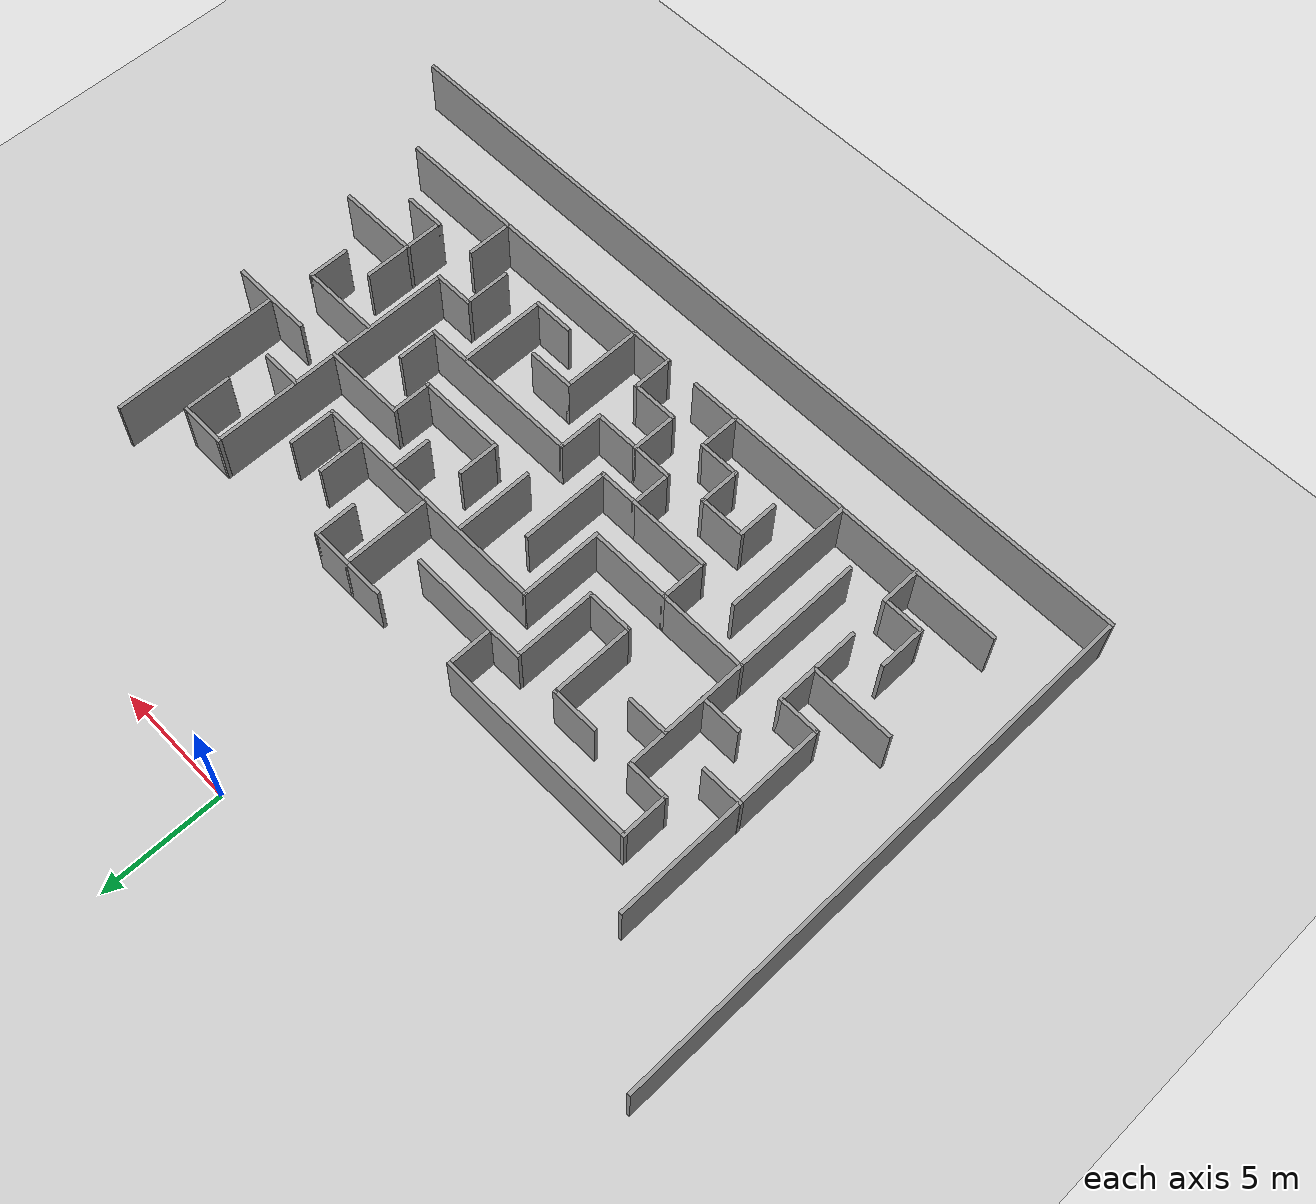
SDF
<sdf version="1.6">
 <world name="default">
  <model name="ground_plane">
   <static>1</static>
   <link name="link">
    <collision name="collision">
     <geometry><plane><normal>0 0 1</normal><size>100 100</size></plane></geometry>
     <surface><friction><ode><mu>100</mu><mu2>50</mu2></ode></friction></surface>
    </collision>
    <visual name="visual">
     <cast_shadows>0</cast_shadows>
     <geometry><plane><normal>0 0 1</normal><size>100 100</size></plane></geometry>
     <material>
      <script><uri>file://media/materials/scripts/gazebo.material</uri><name>Gazebo/Grey</name></script>
     </material>
    </visual>
   </link>
  </model>
  <model name="navigation-maze">
   <pose>0.2351 -0.2528 0 0 -0 0</pose>
   <link name="Wall_101">
    <collision name="Wall_101_Collision">
     <geometry><box><size>1.75 0.15 2.5</size></box></geometry>
     <pose>0 0 1.25 0 -0 0</pose>
    </collision>
    <visual name="Wall_101_Visual">
     <pose>0 0 1.25 0 -0 0</pose>
     <geometry><box><size>1.75 0.15 2.5</size></box></geometry>
     <material>
      <script><uri>file://media/materials/scripts/gazebo.material</uri><name>Gazebo/Grey</name></script>
      <ambient>1 1 1 1</ambient>
     </material>
    </visual>
    <pose>-12.2054 -11.2783 0 0 -0 0</pose>
   </link>
   <link name="Wall_260">
    <collision name="Wall_260_Collision">
     <geometry><box><size>14 0.15 2.5</size></box></geometry>
     <pose>0 0 1.25 0 -0 0</pose>
    </collision>
    <visual name="Wall_260_Visual">
     <pose>0 0 1.25 0 -0 0</pose>
     <geometry><box><size>14 0.15 2.5</size></box></geometry>
     <material>
      <script><uri>file://media/materials/scripts/gazebo.material</uri><name>Gazebo/Grey</name></script>
      <ambient>1 1 1 1</ambient>
     </material>
    </visual>
    <pose>7.72127 -21.675 0 0 -0 3.14159</pose>
   </link>
   <link name="Wall_261">
    <collision name="Wall_261_Collision">
     <geometry><box><size>1.75 0.15 2.5</size></box></geometry>
     <pose>0 0 1.25 0 -0 0</pose>
    </collision>
    <visual name="Wall_261_Visual">
     <pose>0 0 1.25 0 -0 0</pose>
     <geometry><box><size>1.75 0.15 2.5</size></box></geometry>
     <material>
      <script><uri>file://media/materials/scripts/gazebo.material</uri><name>Gazebo/Grey</name></script>
      <ambient>1 1 1 1</ambient>
     </material>
    </visual>
    <pose>0.79627 -20.875 0 0 -0 1.5708</pose>
   </link>
   <link name="Wall_262">
    <collision name="Wall_262_Collision">
     <geometry><box><size>2 0.15 2.5</size></box></geometry>
     <pose>0 0 1.25 0 -0 0</pose>
    </collision>
    <visual name="Wall_262_Visual">
     <pose>0 0 1.25 0 -0 0</pose>
     <geometry><box><size>2 0.15 2.5</size></box></geometry>
     <material>
      <script><uri>file://media/materials/scripts/gazebo.material</uri><name>Gazebo/Grey</name></script>
      <ambient>1 1 1 1</ambient>
     </material>
    </visual>
    <pose>-0.12873 -20.075 0 0 -0 3.14159</pose>
   </link>
   <link name="Wall_263">
    <collision name="Wall_263_Collision">
     <geometry><box><size>2 0.15 2.5</size></box></geometry>
     <pose>0 0 1.25 0 -0 0</pose>
    </collision>
    <visual name="Wall_263_Visual">
     <pose>0 0 1.25 0 -0 0</pose>
     <geometry><box><size>2 0.15 2.5</size></box></geometry>
     <material>
      <script><uri>file://media/materials/scripts/gazebo.material</uri><name>Gazebo/Grey</name></script>
      <ambient>1 1 1 1</ambient>
     </material>
    </visual>
    <pose>-1.05373 -19.15 0 0 -0 1.5708</pose>
   </link>
   <link name="Wall_264">
    <collision name="Wall_264_Collision">
     <geometry><box><size>1.75 0.15 2.5</size></box></geometry>
     <pose>0 0 1.25 0 -0 0</pose>
    </collision>
    <visual name="Wall_264_Visual">
     <pose>0 0 1.25 0 -0 0</pose>
     <geometry><box><size>1.75 0.15 2.5</size></box></geometry>
     <material>
      <script><uri>file://media/materials/scripts/gazebo.material</uri><name>Gazebo/Grey</name></script>
      <ambient>1 1 1 1</ambient>
     </material>
    </visual>
    <pose>-1.85373 -18.225 0 0 -0 3.14159</pose>
   </link>
   <link name="Wall_265">
    <collision name="Wall_265_Collision">
     <geometry><box><size>1.75 0.15 2.5</size></box></geometry>
     <pose>0 0 1.25 0 -0 0</pose>
    </collision>
    <visual name="Wall_265_Visual">
     <pose>0 0 1.25 0 -0 0</pose>
     <geometry><box><size>1.75 0.15 2.5</size></box></geometry>
     <material>
      <script><uri>file://media/materials/scripts/gazebo.material</uri><name>Gazebo/Grey</name></script>
      <ambient>1 1 1 1</ambient>
     </material>
    </visual>
    <pose>-2.65373 -17.425 0 0 -0 1.5708</pose>
   </link>
   <link name="Wall_266">
    <collision name="Wall_266_Collision">
     <geometry><box><size>3.5 0.15 2.5</size></box></geometry>
     <pose>0 0 1.25 0 -0 0</pose>
    </collision>
    <visual name="Wall_266_Visual">
     <pose>0 0 1.25 0 -0 0</pose>
     <geometry><box><size>3.5 0.15 2.5</size></box></geometry>
     <material>
      <script><uri>file://media/materials/scripts/gazebo.material</uri><name>Gazebo/Grey</name></script>
      <ambient>1 1 1 1</ambient>
     </material>
    </visual>
    <pose>-4.32873 -16.625 0 0 -0 3.14159</pose>
   </link>
   <link name="Wall_267">
    <collision name="Wall_267_Collision">
     <geometry><box><size>2 0.15 2.5</size></box></geometry>
     <pose>0 0 1.25 0 -0 0</pose>
    </collision>
    <visual name="Wall_267_Visual">
     <pose>0 0 1.25 0 -0 0</pose>
     <geometry><box><size>2 0.15 2.5</size></box></geometry>
     <material>
      <script><uri>file://media/materials/scripts/gazebo.material</uri><name>Gazebo/Grey</name></script>
      <ambient>1 1 1 1</ambient>
     </material>
    </visual>
    <pose>-6.00373 -15.7 0 0 -0 1.5708</pose>
   </link>
   <link name="Wall_268">
    <collision name="Wall_268_Collision">
     <geometry><box><size>3.75 0.15 2.5</size></box></geometry>
     <pose>0 0 1.25 0 -0 0</pose>
    </collision>
    <visual name="Wall_268_Visual">
     <pose>0 0 1.25 0 -0 0</pose>
     <geometry><box><size>3.75 0.15 2.5</size></box></geometry>
     <material>
      <script><uri>file://media/materials/scripts/gazebo.material</uri><name>Gazebo/Grey</name></script>
      <ambient>1 1 1 1</ambient>
     </material>
    </visual>
    <pose>-7.80373 -14.775 0 0 -0 3.14159</pose>
   </link>
   <link name="Wall_269">
    <collision name="Wall_269_Collision">
     <geometry><box><size>5.25 0.15 2.5</size></box></geometry>
     <pose>0 0 1.25 0 -0 0</pose>
    </collision>
    <visual name="Wall_269_Visual">
     <pose>0 0 1.25 0 -0 0</pose>
     <geometry><box><size>5.25 0.15 2.5</size></box></geometry>
     <material>
      <script><uri>file://media/materials/scripts/gazebo.material</uri><name>Gazebo/Grey</name></script>
      <ambient>1 1 1 1</ambient>
     </material>
    </visual>
    <pose>-9.60373 -12.225 0 0 -0 1.5708</pose>
   </link>
   <link name="Wall_270">
    <collision name="Wall_270_Collision">
     <geometry><box><size>1.75 0.15 2.5</size></box></geometry>
     <pose>0 0 1.25 0 -0 0</pose>
    </collision>
    <visual name="Wall_270_Visual">
     <pose>0 0 1.25 0 -0 0</pose>
     <geometry><box><size>1.75 0.15 2.5</size></box></geometry>
     <material>
      <script><uri>file://media/materials/scripts/gazebo.material</uri><name>Gazebo/Grey</name></script>
      <ambient>1 1 1 1</ambient>
     </material>
    </visual>
    <pose>-10.4037 -9.67497 0 0 -0 3.14159</pose>
   </link>
   <link name="Wall_271">
    <collision name="Wall_271_Collision">
     <geometry><box><size>2 0.15 2.5</size></box></geometry>
     <pose>0 0 1.25 0 -0 0</pose>
    </collision>
    <visual name="Wall_271_Visual">
     <pose>0 0 1.25 0 -0 0</pose>
     <geometry><box><size>2 0.15 2.5</size></box></geometry>
     <material>
      <script><uri>file://media/materials/scripts/gazebo.material</uri><name>Gazebo/Grey</name></script>
      <ambient>1 1 1 1</ambient>
     </material>
    </visual>
    <pose>-11.2037 -8.74997 0 0 -0 1.5708</pose>
   </link>
   <link name="Wall_272">
    <collision name="Wall_272_Collision">
     <geometry><box><size>8.5 0.15 2.5</size></box></geometry>
     <pose>0 0 1.25 0 -0 0</pose>
    </collision>
    <visual name="Wall_272_Visual">
     <pose>0 0 1.25 0 -0 0</pose>
     <geometry><box><size>8.5 0.15 2.5</size></box></geometry>
     <material>
      <script><uri>file://media/materials/scripts/gazebo.material</uri><name>Gazebo/Grey</name></script>
      <ambient>1 1 1 1</ambient>
     </material>
    </visual>
    <pose>-7.02873 -7.82497 0 0 -0 0</pose>
   </link>
   <link name="Wall_273">
    <collision name="Wall_273_Collision">
     <geometry><box><size>2 0.15 2.5</size></box></geometry>
     <pose>0 0 1.25 0 -0 0</pose>
    </collision>
    <visual name="Wall_273_Visual">
     <pose>0 0 1.25 0 -0 0</pose>
     <geometry><box><size>2 0.15 2.5</size></box></geometry>
     <material>
      <script><uri>file://media/materials/scripts/gazebo.material</uri><name>Gazebo/Grey</name></script>
      <ambient>1 1 1 1</ambient>
     </material>
    </visual>
    <pose>-2.85373 -8.74997 0 0 0 -1.5708</pose>
   </link>
   <link name="Wall_274">
    <collision name="Wall_274_Collision">
     <geometry><box><size>1.5 0.15 2.5</size></box></geometry>
     <pose>0 0 1.25 0 -0 0</pose>
    </collision>
    <visual name="Wall_274_Visual">
     <pose>0 0 1.25 0 -0 0</pose>
     <geometry><box><size>1.5 0.15 2.5</size></box></geometry>
     <material>
      <script><uri>file://media/materials/scripts/gazebo.material</uri><name>Gazebo/Grey</name></script>
      <ambient>1 1 1 1</ambient>
     </material>
    </visual>
    <pose>-3.52873 -9.67497 0 0 -0 3.14159</pose>
   </link>
   <link name="Wall_275">
    <collision name="Wall_275_Collision">
     <geometry><box><size>3.5 0.15 2.5</size></box></geometry>
     <pose>0 0 1.25 0 -0 0</pose>
    </collision>
    <visual name="Wall_275_Visual">
     <pose>0 0 1.25 0 -0 0</pose>
     <geometry><box><size>3.5 0.15 2.5</size></box></geometry>
     <material>
      <script><uri>file://media/materials/scripts/gazebo.material</uri><name>Gazebo/Grey</name></script>
      <ambient>1 1 1 1</ambient>
     </material>
    </visual>
    <pose>-4.20373 -11.35 0 0 0 -1.5708</pose>
   </link>
   <link name="Wall_276">
    <collision name="Wall_276_Collision">
     <geometry><box><size>2 0.15 2.5</size></box></geometry>
     <pose>0 0 1.25 0 -0 0</pose>
    </collision>
    <visual name="Wall_276_Visual">
     <pose>0 0 1.25 0 -0 0</pose>
     <geometry><box><size>2 0.15 2.5</size></box></geometry>
     <material>
      <script><uri>file://media/materials/scripts/gazebo.material</uri><name>Gazebo/Grey</name></script>
      <ambient>1 1 1 1</ambient>
     </material>
    </visual>
    <pose>-5.12873 -13.025 0 0 -0 3.14159</pose>
   </link>
   <link name="Wall_277">
    <collision name="Wall_277_Collision">
     <geometry><box><size>3.5 0.15 2.5</size></box></geometry>
     <pose>0 0 1.25 0 -0 0</pose>
    </collision>
    <visual name="Wall_277_Visual">
     <pose>0 0 1.25 0 -0 0</pose>
     <geometry><box><size>3.5 0.15 2.5</size></box></geometry>
     <material>
      <script><uri>file://media/materials/scripts/gazebo.material</uri><name>Gazebo/Grey</name></script>
      <ambient>1 1 1 1</ambient>
     </material>
    </visual>
    <pose>-6.05373 -11.35 0 0 -0 1.5708</pose>
   </link>
   <link name="Wall_278">
    <collision name="Wall_278_Collision">
     <geometry><box><size>2 0.15 2.5</size></box></geometry>
     <pose>0 0 1.25 0 -0 0</pose>
    </collision>
    <visual name="Wall_278_Visual">
     <pose>0 0 1.25 0 -0 0</pose>
     <geometry><box><size>2 0.15 2.5</size></box></geometry>
     <material>
      <script><uri>file://media/materials/scripts/gazebo.material</uri><name>Gazebo/Grey</name></script>
      <ambient>1 1 1 1</ambient>
     </material>
    </visual>
    <pose>-6.97873 -9.67497 0 0 -0 3.14159</pose>
   </link>
   <link name="Wall_319">
    <collision name="Wall_319_Collision">
     <geometry><box><size>2 0.15 2.5</size></box></geometry>
     <pose>0 0 1.25 0 -0 0</pose>
    </collision>
    <visual name="Wall_319_Visual">
     <pose>0 0 1.25 0 -0 0</pose>
     <geometry><box><size>2 0.15 2.5</size></box></geometry>
     <material>
      <script><uri>file://media/materials/scripts/gazebo.material</uri><name>Gazebo/Grey</name></script>
      <ambient>1 1 1 1</ambient>
     </material>
    </visual>
    <pose>10.3324 -7.72004 0 0 -0 3.14159</pose>
   </link>
   <link name="Wall_320">
    <collision name="Wall_320_Collision">
     <geometry><box><size>5.5 0.15 2.5</size></box></geometry>
     <pose>0 0 1.25 0 -0 0</pose>
    </collision>
    <visual name="Wall_320_Visual">
     <pose>0 0 1.25 0 -0 0</pose>
     <geometry><box><size>5.5 0.15 2.5</size></box></geometry>
     <material>
      <script><uri>file://media/materials/scripts/gazebo.material</uri><name>Gazebo/Grey</name></script>
      <ambient>1 1 1 1</ambient>
     </material>
    </visual>
    <pose>9.40741 -10.395 0 0 0 -1.5708</pose>
   </link>
   <link name="Wall_321">
    <collision name="Wall_321_Collision">
     <geometry><box><size>3.5 0.15 2.5</size></box></geometry>
     <pose>0 0 1.25 0 -0 0</pose>
    </collision>
    <visual name="Wall_321_Visual">
     <pose>0 0 1.25 0 -0 0</pose>
     <geometry><box><size>3.5 0.15 2.5</size></box></geometry>
     <material>
      <script><uri>file://media/materials/scripts/gazebo.material</uri><name>Gazebo/Grey</name></script>
      <ambient>1 1 1 1</ambient>
     </material>
    </visual>
    <pose>7.73241 -13.07 0 0 -0 3.14159</pose>
   </link>
   <link name="Wall_322">
    <collision name="Wall_322_Collision">
     <geometry><box><size>1.75 0.15 2.5</size></box></geometry>
     <pose>0 0 1.25 0 -0 0</pose>
    </collision>
    <visual name="Wall_322_Visual">
     <pose>0 0 1.25 0 -0 0</pose>
     <geometry><box><size>1.75 0.15 2.5</size></box></geometry>
     <material>
      <script><uri>file://media/materials/scripts/gazebo.material</uri><name>Gazebo/Grey</name></script>
      <ambient>1 1 1 1</ambient>
     </material>
    </visual>
    <pose>6.05741 -13.87 0 0 0 -1.5708</pose>
   </link>
   <link name="Wall_323">
    <collision name="Wall_323_Collision">
     <geometry><box><size>3.75 0.15 2.5</size></box></geometry>
     <pose>0 0 1.25 0 -0 0</pose>
    </collision>
    <visual name="Wall_323_Visual">
     <pose>0 0 1.25 0 -0 0</pose>
     <geometry><box><size>3.75 0.15 2.5</size></box></geometry>
     <material>
      <script><uri>file://media/materials/scripts/gazebo.material</uri><name>Gazebo/Grey</name></script>
      <ambient>1 1 1 1</ambient>
     </material>
    </visual>
    <pose>4.25741 -14.67 0 0 -0 3.14159</pose>
   </link>
   <link name="Wall_324">
    <collision name="Wall_324_Collision">
     <geometry><box><size>1.75 0.15 2.5</size></box></geometry>
     <pose>0 0 1.25 0 -0 0</pose>
    </collision>
    <visual name="Wall_324_Visual">
     <pose>0 0 1.25 0 -0 0</pose>
     <geometry><box><size>1.75 0.15 2.5</size></box></geometry>
     <material>
      <script><uri>file://media/materials/scripts/gazebo.material</uri><name>Gazebo/Grey</name></script>
      <ambient>1 1 1 1</ambient>
     </material>
    </visual>
    <pose>2.45741 -13.87 0 0 -0 1.5708</pose>
   </link>
   <link name="Wall_326">
    <collision name="Wall_326_Collision">
     <geometry><box><size>2 0.15 2.5</size></box></geometry>
     <pose>0 0 1.25 0 -0 0</pose>
    </collision>
    <visual name="Wall_326_Visual">
     <pose>0 0 1.25 0 -0 0</pose>
     <geometry><box><size>2 0.15 2.5</size></box></geometry>
     <material>
      <script><uri>file://media/materials/scripts/gazebo.material</uri><name>Gazebo/Grey</name></script>
      <ambient>1 1 1 1</ambient>
     </material>
    </visual>
    <pose>11.2574 -8.64504 0 0 0 -1.5708</pose>
   </link>
   <link name="Wall_331">
    <collision name="Wall_331_Collision">
     <geometry><box><size>1.75 0.15 2.5</size></box></geometry>
     <pose>0 0 1.25 0 -0 0</pose>
    </collision>
    <visual name="Wall_331_Visual">
     <pose>0 0 1.25 0 -0 0</pose>
     <geometry><box><size>1.75 0.15 2.5</size></box></geometry>
     <material>
      <script><uri>file://media/materials/scripts/gazebo.material</uri><name>Gazebo/Grey</name></script>
      <ambient>1 1 1 1</ambient>
     </material>
    </visual>
    <pose>10.2341 -11.2734 0 0 -0 0</pose>
   </link>
   <link name="Wall_333">
    <collision name="Wall_333_Collision">
     <geometry><box><size>5.25 0.15 2.5</size></box></geometry>
     <pose>0 0 1.25 0 -0 0</pose>
    </collision>
    <visual name="Wall_333_Visual">
     <pose>0 0 1.25 0 -0 0</pose>
     <geometry><box><size>5.25 0.15 2.5</size></box></geometry>
     <material>
      <script><uri>file://media/materials/scripts/gazebo.material</uri><name>Gazebo/Grey</name></script>
      <ambient>1 1 1 1</ambient>
     </material>
    </visual>
    <pose>9.40741 -15.62 0 0 0 -1.5708</pose>
   </link>
   <link name="Wall_334">
    <collision name="Wall_334_Collision">
     <geometry><box><size>1.75 0.15 2.5</size></box></geometry>
     <pose>0 0 1.25 0 -0 0</pose>
    </collision>
    <visual name="Wall_334_Visual">
     <pose>0 0 1.25 0 -0 0</pose>
     <geometry><box><size>1.75 0.15 2.5</size></box></geometry>
     <material>
      <script><uri>file://media/materials/scripts/gazebo.material</uri><name>Gazebo/Grey</name></script>
      <ambient>1 1 1 1</ambient>
     </material>
    </visual>
    <pose>8.60741 -18.17 0 0 -0 3.14159</pose>
   </link>
   <link name="Wall_335">
    <collision name="Wall_335_Collision">
     <geometry><box><size>2 0.15 2.5</size></box></geometry>
     <pose>0 0 1.25 0 -0 0</pose>
    </collision>
    <visual name="Wall_335_Visual">
     <pose>0 0 1.25 0 -0 0</pose>
     <geometry><box><size>2 0.15 2.5</size></box></geometry>
     <material>
      <script><uri>file://media/materials/scripts/gazebo.material</uri><name>Gazebo/Grey</name></script>
      <ambient>1 1 1 1</ambient>
     </material>
    </visual>
    <pose>7.80741 -19.095 0 0 0 -1.5708</pose>
   </link>
   <link name="Wall_337">
    <collision name="Wall_337_Collision">
     <geometry><box><size>3.5 0.15 2.5</size></box></geometry>
     <pose>0 0 1.25 0 -0 0</pose>
    </collision>
    <visual name="Wall_337_Visual">
     <pose>0 0 1.25 0 -0 0</pose>
     <geometry><box><size>3.5 0.15 2.5</size></box></geometry>
     <material>
      <script><uri>file://media/materials/scripts/gazebo.material</uri><name>Gazebo/Grey</name></script>
      <ambient>1 1 1 1</ambient>
     </material>
    </visual>
    <pose>11.0921 -14.7741 0 0 -0 0</pose>
   </link>
   <link name="Wall_338">
    <collision name="Wall_338_Collision">
     <geometry><box><size>1.75 0.15 2.5</size></box></geometry>
     <pose>0 0 1.25 0 -0 0</pose>
    </collision>
    <visual name="Wall_338_Visual">
     <pose>0 0 1.25 0 -0 0</pose>
     <geometry><box><size>1.75 0.15 2.5</size></box></geometry>
     <material>
      <script><uri>file://media/materials/scripts/gazebo.material</uri><name>Gazebo/Grey</name></script>
      <ambient>1 1 1 1</ambient>
     </material>
    </visual>
    <pose>12.7671 -15.5741 0 0 0 -1.5708</pose>
   </link>
   <link name="Wall_340">
    <collision name="Wall_340_Collision">
     <geometry><box><size>3.5 0.15 2.5</size></box></geometry>
     <pose>0 0 1.25 0 -0 0</pose>
    </collision>
    <visual name="Wall_340_Visual">
     <pose>0 0 1.25 0 -0 0</pose>
     <geometry><box><size>3.5 0.15 2.5</size></box></geometry>
     <material>
      <script><uri>file://media/materials/scripts/gazebo.material</uri><name>Gazebo/Grey</name></script>
      <ambient>1 1 1 1</ambient>
     </material>
    </visual>
    <pose>12.9593 -13.0068 0 0 -0 3.14159</pose>
   </link>
   <link name="Wall_342">
    <collision name="Wall_342_Collision">
     <geometry><box><size>7 0.15 2.5</size></box></geometry>
     <pose>0 0 1.25 0 -0 0</pose>
    </collision>
    <visual name="Wall_342_Visual">
     <pose>0 0 1.25 0 -0 0</pose>
     <geometry><box><size>7 0.15 2.5</size></box></geometry>
     <material>
      <script><uri>file://media/materials/scripts/gazebo.material</uri><name>Gazebo/Grey</name></script>
      <ambient>1 1 1 1</ambient>
     </material>
    </visual>
    <pose>12.9519 -9.46535 0 0 -0 1.5708</pose>
   </link>
   <link name="Wall_344">
    <collision name="Wall_344_Collision">
     <geometry><box><size>3.5 0.15 2.5</size></box></geometry>
     <pose>0 0 1.25 0 -0 0</pose>
    </collision>
    <visual name="Wall_344_Visual">
     <pose>0 0 1.25 0 -0 0</pose>
     <geometry><box><size>3.5 0.15 2.5</size></box></geometry>
     <material>
      <script><uri>file://media/materials/scripts/gazebo.material</uri><name>Gazebo/Grey</name></script>
      <ambient>1 1 1 1</ambient>
     </material>
    </visual>
    <pose>12.9763 -18.2069 0 0 -0 3.14159</pose>
   </link>
   <link name="Wall_345">
    <collision name="Wall_345_Collision">
     <geometry><box><size>1.75 0.15 2.5</size></box></geometry>
     <pose>0 0 1.25 0 -0 0</pose>
    </collision>
    <visual name="Wall_345_Visual">
     <pose>0 0 1.25 0 -0 0</pose>
     <geometry><box><size>1.75 0.15 2.5</size></box></geometry>
     <material>
      <script><uri>file://media/materials/scripts/gazebo.material</uri><name>Gazebo/Grey</name></script>
      <ambient>1 1 1 1</ambient>
     </material>
    </visual>
    <pose>11.3013 -19.0069 0 0 0 -1.5708</pose>
   </link>
   <link name="Wall_346">
    <collision name="Wall_346_Collision">
     <geometry><box><size>1.75 0.15 2.5</size></box></geometry>
     <pose>0 0 1.25 0 -0 0</pose>
    </collision>
    <visual name="Wall_346_Visual">
     <pose>0 0 1.25 0 -0 0</pose>
     <geometry><box><size>1.75 0.15 2.5</size></box></geometry>
     <material>
      <script><uri>file://media/materials/scripts/gazebo.material</uri><name>Gazebo/Grey</name></script>
      <ambient>1 1 1 1</ambient>
     </material>
    </visual>
    <pose>12.1013 -19.8069 0 0 -0 0</pose>
   </link>
   <link name="Wall_348">
    <collision name="Wall_348_Collision">
     <geometry><box><size>2 0.15 2.5</size></box></geometry>
     <pose>0 0 1.25 0 -0 0</pose>
    </collision>
    <visual name="Wall_348_Visual">
     <pose>0 0 1.25 0 -0 0</pose>
     <geometry><box><size>2 0.15 2.5</size></box></geometry>
     <material>
      <script><uri>file://media/materials/scripts/gazebo.material</uri><name>Gazebo/Grey</name></script>
      <ambient>1 1 1 1</ambient>
     </material>
    </visual>
    <pose>11.3013 -17.2819 0 0 -0 1.5708</pose>
   </link>
   <link name="Wall_350">
    <collision name="Wall_350_Collision">
     <geometry><box><size>2 0.15 2.5</size></box></geometry>
     <pose>0 0 1.25 0 -0 0</pose>
    </collision>
    <visual name="Wall_350_Visual">
     <pose>0 0 1.25 0 -0 0</pose>
     <geometry><box><size>2 0.15 2.5</size></box></geometry>
     <material>
      <script><uri>file://media/materials/scripts/gazebo.material</uri><name>Gazebo/Grey</name></script>
      <ambient>1 1 1 1</ambient>
     </material>
    </visual>
    <pose>9.45109 -20.7487 0 0 -0 1.5708</pose>
   </link>
   <link name="Wall_352">
    <collision name="Wall_352_Collision">
     <geometry><box><size>3.5 0.15 2.5</size></box></geometry>
     <pose>0 0 1.25 0 -0 0</pose>
    </collision>
    <visual name="Wall_352_Visual">
     <pose>0 0 1.25 0 -0 0</pose>
     <geometry><box><size>3.5 0.15 2.5</size></box></geometry>
     <material>
      <script><uri>file://media/materials/scripts/gazebo.material</uri><name>Gazebo/Grey</name></script>
      <ambient>1 1 1 1</ambient>
     </material>
    </visual>
    <pose>2.53453 -20.0157 0 0 -0 1.5708</pose>
   </link>
   <link name="Wall_353">
    <collision name="Wall_353_Collision">
     <geometry><box><size>2 0.15 2.5</size></box></geometry>
     <pose>0 0 1.25 0 -0 0</pose>
    </collision>
    <visual name="Wall_353_Visual">
     <pose>0 0 1.25 0 -0 0</pose>
     <geometry><box><size>2 0.15 2.5</size></box></geometry>
     <material>
      <script><uri>file://media/materials/scripts/gazebo.material</uri><name>Gazebo/Grey</name></script>
      <ambient>1 1 1 1</ambient>
     </material>
    </visual>
    <pose>3.45953 -18.3407 0 0 -0 0</pose>
   </link>
   <link name="Wall_355">
    <collision name="Wall_355_Collision">
     <geometry><box><size>2 0.15 2.5</size></box></geometry>
     <pose>0 0 1.25 0 -0 0</pose>
    </collision>
    <visual name="Wall_355_Visual">
     <pose>0 0 1.25 0 -0 0</pose>
     <geometry><box><size>2 0.15 2.5</size></box></geometry>
     <material>
      <script><uri>file://media/materials/scripts/gazebo.material</uri><name>Gazebo/Grey</name></script>
      <ambient>1 1 1 1</ambient>
     </material>
    </visual>
    <pose>-0.12873 -18.225 0 0 -0 0</pose>
   </link>
   <link name="Wall_356">
    <collision name="Wall_356_Collision">
     <geometry><box><size>2 0.15 2.5</size></box></geometry>
     <pose>0 0 1.25 0 -0 0</pose>
    </collision>
    <visual name="Wall_356_Visual">
     <pose>0 0 1.25 0 -0 0</pose>
     <geometry><box><size>2 0.15 2.5</size></box></geometry>
     <material>
      <script><uri>file://media/materials/scripts/gazebo.material</uri><name>Gazebo/Grey</name></script>
      <ambient>1 1 1 1</ambient>
     </material>
    </visual>
    <pose>0.79627 -17.3 0 0 -0 1.5708</pose>
   </link>
   <link name="Wall_357">
    <collision name="Wall_357_Collision">
     <geometry><box><size>7 0.15 2.5</size></box></geometry>
     <pose>0 0 1.25 0 -0 0</pose>
    </collision>
    <visual name="Wall_357_Visual">
     <pose>0 0 1.25 0 -0 0</pose>
     <geometry><box><size>7 0.15 2.5</size></box></geometry>
     <material>
      <script><uri>file://media/materials/scripts/gazebo.material</uri><name>Gazebo/Grey</name></script>
      <ambient>1 1 1 1</ambient>
     </material>
    </visual>
    <pose>4.22127 -16.375 0 0 -0 0</pose>
   </link>
   <link name="Wall_358">
    <collision name="Wall_358_Collision">
     <geometry><box><size>1.75 0.15 2.5</size></box></geometry>
     <pose>0 0 1.25 0 -0 0</pose>
    </collision>
    <visual name="Wall_358_Visual">
     <pose>0 0 1.25 0 -0 0</pose>
     <geometry><box><size>1.75 0.15 2.5</size></box></geometry>
     <material>
      <script><uri>file://media/materials/scripts/gazebo.material</uri><name>Gazebo/Grey</name></script>
      <ambient>1 1 1 1</ambient>
     </material>
    </visual>
    <pose>7.64627 -15.575 0 0 -0 1.5708</pose>
   </link>
   <link name="Wall_360">
    <collision name="Wall_360_Collision">
     <geometry><box><size>3.75 0.15 2.5</size></box></geometry>
     <pose>0 0 1.25 0 -0 0</pose>
    </collision>
    <visual name="Wall_360_Visual">
     <pose>0 0 1.25 0 -0 0</pose>
     <geometry><box><size>3.75 0.15 2.5</size></box></geometry>
     <material>
      <script><uri>file://media/materials/scripts/gazebo.material</uri><name>Gazebo/Grey</name></script>
      <ambient>1 1 1 1</ambient>
     </material>
    </visual>
    <pose>5.95033 -18.2056 0 0 0 -1.5708</pose>
   </link>
   <link name="Wall_361">
    <collision name="Wall_361_Collision">
     <geometry><box><size>1.75 0.15 2.5</size></box></geometry>
     <pose>0 0 1.25 0 -0 0</pose>
    </collision>
    <visual name="Wall_361_Visual">
     <pose>0 0 1.25 0 -0 0</pose>
     <geometry><box><size>1.75 0.15 2.5</size></box></geometry>
     <material>
      <script><uri>file://media/materials/scripts/gazebo.material</uri><name>Gazebo/Grey</name></script>
      <ambient>1 1 1 1</ambient>
     </material>
    </visual>
    <pose>5.15032 -20.0056 0 0 -0 3.14159</pose>
   </link>
   <link name="Wall_363">
    <collision name="Wall_363_Collision">
     <geometry><box><size>1.75 0.15 2.5</size></box></geometry>
     <pose>0 0 1.25 0 -0 0</pose>
    </collision>
    <visual name="Wall_363_Visual">
     <pose>0 0 1.25 0 -0 0</pose>
     <geometry><box><size>1.75 0.15 2.5</size></box></geometry>
     <material>
      <script><uri>file://media/materials/scripts/gazebo.material</uri><name>Gazebo/Grey</name></script>
      <ambient>1 1 1 1</ambient>
     </material>
    </visual>
    <pose>-1.85373 -16.625 0 0 -0 0</pose>
   </link>
   <link name="Wall_364">
    <collision name="Wall_364_Collision">
     <geometry><box><size>3.75 0.15 2.5</size></box></geometry>
     <pose>0 0 1.25 0 -0 0</pose>
    </collision>
    <visual name="Wall_364_Visual">
     <pose>0 0 1.25 0 -0 0</pose>
     <geometry><box><size>3.75 0.15 2.5</size></box></geometry>
     <material>
      <script><uri>file://media/materials/scripts/gazebo.material</uri><name>Gazebo/Grey</name></script>
      <ambient>1 1 1 1</ambient>
     </material>
    </visual>
    <pose>-1.05373 -14.825 0 0 -0 1.5708</pose>
   </link>
   <link name="Wall_366">
    <collision name="Wall_366_Collision">
     <geometry><box><size>3.5 0.15 2.5</size></box></geometry>
     <pose>0 0 1.25 0 -0 0</pose>
    </collision>
    <visual name="Wall_366_Visual">
     <pose>0 0 1.25 0 -0 0</pose>
     <geometry><box><size>3.5 0.15 2.5</size></box></geometry>
     <material>
      <script><uri>file://media/materials/scripts/gazebo.material</uri><name>Gazebo/Grey</name></script>
      <ambient>1 1 1 1</ambient>
     </material>
    </visual>
    <pose>-4.32873 -14.775 0 0 -0 0</pose>
   </link>
   <link name="Wall_367">
    <collision name="Wall_367_Collision">
     <geometry><box><size>3.5 0.15 2.5</size></box></geometry>
     <pose>0 0 1.25 0 -0 0</pose>
    </collision>
    <visual name="Wall_367_Visual">
     <pose>0 0 1.25 0 -0 0</pose>
     <geometry><box><size>3.5 0.15 2.5</size></box></geometry>
     <material>
      <script><uri>file://media/materials/scripts/gazebo.material</uri><name>Gazebo/Grey</name></script>
      <ambient>1 1 1 1</ambient>
     </material>
    </visual>
    <pose>-2.65373 -13.1 0 0 -0 1.5708</pose>
   </link>
   <link name="Wall_368">
    <collision name="Wall_368_Collision">
     <geometry><box><size>5.25 0.15 2.5</size></box></geometry>
     <pose>0 0 1.25 0 -0 0</pose>
    </collision>
    <visual name="Wall_368_Visual">
     <pose>0 0 1.25 0 -0 0</pose>
     <geometry><box><size>5.25 0.15 2.5</size></box></geometry>
     <material>
      <script><uri>file://media/materials/scripts/gazebo.material</uri><name>Gazebo/Grey</name></script>
      <ambient>1 1 1 1</ambient>
     </material>
    </visual>
    <pose>-0.10373 -11.425 0 0 -0 0</pose>
   </link>
   <link name="Wall_369">
    <collision name="Wall_369_Collision">
     <geometry><box><size>3.75 0.15 2.5</size></box></geometry>
     <pose>0 0 1.25 0 -0 0</pose>
    </collision>
    <visual name="Wall_369_Visual">
     <pose>0 0 1.25 0 -0 0</pose>
     <geometry><box><size>3.75 0.15 2.5</size></box></geometry>
     <material>
      <script><uri>file://media/materials/scripts/gazebo.material</uri><name>Gazebo/Grey</name></script>
      <ambient>1 1 1 1</ambient>
     </material>
    </visual>
    <pose>2.44627 -9.62497 0 0 -0 1.5708</pose>
   </link>
   <link name="Wall_370">
    <collision name="Wall_370_Collision">
     <geometry><box><size>1.75 0.15 2.5</size></box></geometry>
     <pose>0 0 1.25 0 -0 0</pose>
    </collision>
    <visual name="Wall_370_Visual">
     <pose>0 0 1.25 0 -0 0</pose>
     <geometry><box><size>1.75 0.15 2.5</size></box></geometry>
     <material>
      <script><uri>file://media/materials/scripts/gazebo.material</uri><name>Gazebo/Grey</name></script>
      <ambient>1 1 1 1</ambient>
     </material>
    </visual>
    <pose>3.24627 -7.82497 0 0 -0 0</pose>
   </link>
   <link name="Wall_379">
    <collision name="Wall_379_Collision">
     <geometry><box><size>1.75 0.15 2.5</size></box></geometry>
     <pose>0 0 1.25 0 -0 0</pose>
    </collision>
    <visual name="Wall_379_Visual">
     <pose>0 0 1.25 0 -0 0</pose>
     <geometry><box><size>1.75 0.15 2.5</size></box></geometry>
     <material>
      <script><uri>file://media/materials/scripts/gazebo.material</uri><name>Gazebo/Grey</name></script>
      <ambient>1 1 1 1</ambient>
     </material>
    </visual>
    <pose>4.04627 -8.62497 0 0 0 -1.5708</pose>
   </link>
   <link name="Wall_381">
    <collision name="Wall_381_Collision">
     <geometry><box><size>1.75 0.15 2.5</size></box></geometry>
     <pose>0 0 1.25 0 -0 0</pose>
    </collision>
    <visual name="Wall_381_Visual">
     <pose>0 0 1.25 0 -0 0</pose>
     <geometry><box><size>1.75 0.15 2.5</size></box></geometry>
     <material>
      <script><uri>file://media/materials/scripts/gazebo.material</uri><name>Gazebo/Grey</name></script>
      <ambient>1 1 1 1</ambient>
     </material>
    </visual>
    <pose>1.64627 -7.82497 0 0 -0 3.14159</pose>
   </link>
   <link name="Wall_384">
    <collision name="Wall_384_Collision">
     <geometry><box><size>5.25 0.15 2.5</size></box></geometry>
     <pose>0 0 1.25 0 -0 0</pose>
    </collision>
    <visual name="Wall_384_Visual">
     <pose>0 0 1.25 0 -0 0</pose>
     <geometry><box><size>5.25 0.15 2.5</size></box></geometry>
     <material>
      <script><uri>file://media/materials/scripts/gazebo.material</uri><name>Gazebo/Grey</name></script>
      <ambient>1 1 1 1</ambient>
     </material>
    </visual>
    <pose>4.99627 -11.425 0 0 -0 0</pose>
   </link>
   <link name="Wall_385">
    <collision name="Wall_385_Collision">
     <geometry><box><size>2 0.15 2.5</size></box></geometry>
     <pose>0 0 1.25 0 -0 0</pose>
    </collision>
    <visual name="Wall_385_Visual">
     <pose>0 0 1.25 0 -0 0</pose>
     <geometry><box><size>2 0.15 2.5</size></box></geometry>
     <material>
      <script><uri>file://media/materials/scripts/gazebo.material</uri><name>Gazebo/Grey</name></script>
      <ambient>1 1 1 1</ambient>
     </material>
    </visual>
    <pose>7.54627 -10.5 0 0 -0 1.5708</pose>
   </link>
   <link name="Wall_387">
    <collision name="Wall_387_Collision">
     <geometry><box><size>2 0.15 2.5</size></box></geometry>
     <pose>0 0 1.25 0 -0 0</pose>
    </collision>
    <visual name="Wall_387_Visual">
     <pose>0 0 1.25 0 -0 0</pose>
     <geometry><box><size>2 0.15 2.5</size></box></geometry>
     <material>
      <script><uri>file://media/materials/scripts/gazebo.material</uri><name>Gazebo/Grey</name></script>
      <ambient>1 1 1 1</ambient>
     </material>
    </visual>
    <pose>5.91634 -10.494 0 0 -0 1.5708</pose>
   </link>
   <link name="Wall_389">
    <collision name="Wall_389_Collision">
     <geometry><box><size>1.75 0.15 2.5</size></box></geometry>
     <pose>0 0 1.25 0 -0 0</pose>
    </collision>
    <visual name="Wall_389_Visual">
     <pose>0 0 1.25 0 -0 0</pose>
     <geometry><box><size>1.75 0.15 2.5</size></box></geometry>
     <material>
      <script><uri>file://media/materials/scripts/gazebo.material</uri><name>Gazebo/Grey</name></script>
      <ambient>1 1 1 1</ambient>
     </material>
    </visual>
    <pose>4.25336 -12.2383 0 0 0 -1.5708</pose>
   </link>
   <link name="Wall_391">
    <collision name="Wall_391_Collision">
     <geometry><box><size>3.25 0.15 2.5</size></box></geometry>
     <pose>0 0 1.25 0 -0 0</pose>
    </collision>
    <visual name="Wall_391_Visual">
     <pose>0 0 1.25 0 -0 0</pose>
     <geometry><box><size>3.25 0.15 2.5</size></box></geometry>
     <material>
      <script><uri>file://media/materials/scripts/gazebo.material</uri><name>Gazebo/Grey</name></script>
      <ambient>1 1 1 1</ambient>
     </material>
    </visual>
    <pose>0.793861 -13.1195 0 0 0 -1.5708</pose>
   </link>
   <link name="Wall_393">
    <collision name="Wall_393_Collision">
     <geometry><box><size>3.75 0.15 2.5</size></box></geometry>
     <pose>0 0 1.25 0 -0 0</pose>
    </collision>
    <visual name="Wall_393_Visual">
     <pose>0 0 1.25 0 -0 0</pose>
     <geometry><box><size>3.75 0.15 2.5</size></box></geometry>
     <material>
      <script><uri>file://media/materials/scripts/gazebo.material</uri><name>Gazebo/Grey</name></script>
      <ambient>1 1 1 1</ambient>
     </material>
    </visual>
    <pose>-1.05373 -9.67497 0 0 -0 0</pose>
   </link>
   <link name="Wall_400">
    <collision name="Wall_400_Collision">
     <geometry><box><size>1.75 0.15 2.5</size></box></geometry>
     <pose>0 0 1.25 0 -0 0</pose>
    </collision>
    <visual name="Wall_400_Visual">
     <pose>0 0 1.25 0 -0 0</pose>
     <geometry><box><size>1.75 0.15 2.5</size></box></geometry>
     <material>
      <script><uri>file://media/materials/scripts/gazebo.material</uri><name>Gazebo/Grey</name></script>
      <ambient>1 1 1 1</ambient>
     </material>
    </visual>
    <pose>-8.78221 -11.2734 0 0 -0 0</pose>
   </link>
   <link name="Wall_402">
    <collision name="Wall_402_Collision">
     <geometry><box><size>1.75 0.15 2.5</size></box></geometry>
     <pose>0 0 1.25 0 -0 0</pose>
    </collision>
    <visual name="Wall_402_Visual">
     <pose>0 0 1.25 0 -0 0</pose>
     <geometry><box><size>1.75 0.15 2.5</size></box></geometry>
     <material>
      <script><uri>file://media/materials/scripts/gazebo.material</uri><name>Gazebo/Grey</name></script>
      <ambient>1 1 1 1</ambient>
     </material>
    </visual>
    <pose>-10.3822 -13.0407 0 0 -0 3.14159</pose>
   </link>
   <link name="Wall_404">
    <collision name="Wall_404_Collision">
     <geometry><box><size>5.5 0.15 2.5</size></box></geometry>
     <pose>0 0 1.25 0 -0 0</pose>
    </collision>
    <visual name="Wall_404_Visual">
     <pose>0 0 1.25 0 -0 0</pose>
     <geometry><box><size>5.5 0.15 2.5</size></box></geometry>
     <material>
      <script><uri>file://media/materials/scripts/gazebo.material</uri><name>Gazebo/Grey</name></script>
      <ambient>1 1 1 1</ambient>
     </material>
    </visual>
    <pose>-9.60373 -17.45 0 0 0 -1.5708</pose>
   </link>
   <link name="Wall_66">
    <collision name="Wall_66_Collision">
     <geometry><box><size>34.75 0.15 2.5</size></box></geometry>
     <pose>0 0 1.25 0 -0 0</pose>
    </collision>
    <visual name="Wall_66_Visual">
     <pose>0 0 1.25 0 -0 0</pose>
     <geometry><box><size>34.75 0.15 2.5</size></box></geometry>
     <material>
      <script><uri>file://media/materials/scripts/gazebo.material</uri><name>Gazebo/Grey</name></script>
      <ambient>1 1 1 1</ambient>
     </material>
    </visual>
    <pose>0.124999 -24.925 0 0 -0 3.14159</pose>
   </link>
   <link name="Wall_67">
    <collision name="Wall_67_Collision">
     <geometry><box><size>22.75 0.15 2.5</size></box></geometry>
     <pose>0 0 1.25 0 -0 0</pose>
    </collision>
    <visual name="Wall_67_Visual">
     <pose>0 0 1.25 0 -0 0</pose>
     <geometry><box><size>22.75 0.15 2.5</size></box></geometry>
     <material>
      <script><uri>file://media/materials/scripts/gazebo.material</uri><name>Gazebo/Grey</name></script>
      <ambient>1 1 1 1</ambient>
     </material>
    </visual>
    <pose>-17.175 -13.625 0 0 -0 1.5708</pose>
   </link>
   <link name="Wall_71">
    <collision name="Wall_71_Collision">
     <geometry><box><size>14.25 0.15 2.5</size></box></geometry>
     <pose>0 0 1.25 0 -0 0</pose>
    </collision>
    <visual name="Wall_71_Visual">
     <pose>0 0 1.25 0 -0 0</pose>
     <geometry><box><size>14.25 0.15 2.5</size></box></geometry>
     <material>
      <script><uri>file://media/materials/scripts/gazebo.material</uri><name>Gazebo/Grey</name></script>
      <ambient>1 1 1 1</ambient>
     </material>
    </visual>
    <pose>-7.6837 -21.675 0 0 -0 0</pose>
   </link>
   <link name="Wall_73">
    <collision name="Wall_73_Collision">
     <geometry><box><size>1.75 0.15 2.5</size></box></geometry>
     <pose>0 0 1.25 0 -0 0</pose>
    </collision>
    <visual name="Wall_73_Visual">
     <pose>0 0 1.25 0 -0 0</pose>
     <geometry><box><size>1.75 0.15 2.5</size></box></geometry>
     <material>
      <script><uri>file://media/materials/scripts/gazebo.material</uri><name>Gazebo/Grey</name></script>
      <ambient>1 1 1 1</ambient>
     </material>
    </visual>
    <pose>-2.64122 -20.8166 0 0 -0 1.5708</pose>
   </link>
   <link name="Wall_74">
    <collision name="Wall_74_Collision">
     <geometry><box><size>1.75 0.15 2.5</size></box></geometry>
     <pose>0 0 1.25 0 -0 0</pose>
    </collision>
    <visual name="Wall_74_Visual">
     <pose>0 0 1.25 0 -0 0</pose>
     <geometry><box><size>1.75 0.15 2.5</size></box></geometry>
     <material>
      <script><uri>file://media/materials/scripts/gazebo.material</uri><name>Gazebo/Grey</name></script>
      <ambient>1 1 1 1</ambient>
     </material>
    </visual>
    <pose>-3.44122 -20.0166 0 0 -0 3.14159</pose>
   </link>
   <link name="Wall_75">
    <collision name="Wall_75_Collision">
     <geometry><box><size>1.75 0.15 2.5</size></box></geometry>
     <pose>0 0 1.25 0 -0 0</pose>
    </collision>
    <visual name="Wall_75_Visual">
     <pose>0 0 1.25 0 -0 0</pose>
     <geometry><box><size>1.75 0.15 2.5</size></box></geometry>
     <material>
      <script><uri>file://media/materials/scripts/gazebo.material</uri><name>Gazebo/Grey</name></script>
      <ambient>1 1 1 1</ambient>
     </material>
    </visual>
    <pose>-4.24122 -19.2166 0 0 -0 1.5708</pose>
   </link>
   <link name="Wall_76">
    <collision name="Wall_76_Collision">
     <geometry><box><size>2 0.15 2.5</size></box></geometry>
     <pose>0 0 1.25 0 -0 0</pose>
    </collision>
    <visual name="Wall_76_Visual">
     <pose>0 0 1.25 0 -0 0</pose>
     <geometry><box><size>2 0.15 2.5</size></box></geometry>
     <material>
      <script><uri>file://media/materials/scripts/gazebo.material</uri><name>Gazebo/Grey</name></script>
      <ambient>1 1 1 1</ambient>
     </material>
    </visual>
    <pose>-5.16622 -18.4166 0 0 -0 3.14159</pose>
   </link>
   <link name="Wall_77">
    <collision name="Wall_77_Collision">
     <geometry><box><size>1.75 0.15 2.5</size></box></geometry>
     <pose>0 0 1.25 0 -0 0</pose>
    </collision>
    <visual name="Wall_77_Visual">
     <pose>0 0 1.25 0 -0 0</pose>
     <geometry><box><size>1.75 0.15 2.5</size></box></geometry>
     <material>
      <script><uri>file://media/materials/scripts/gazebo.material</uri><name>Gazebo/Grey</name></script>
      <ambient>1 1 1 1</ambient>
     </material>
    </visual>
    <pose>-6.09122 -19.2166 0 0 0 -1.5708</pose>
   </link>
   <link name="Wall_79">
    <collision name="Wall_79_Collision">
     <geometry><box><size>5.5 0.15 2.5</size></box></geometry>
     <pose>0 0 1.25 0 -0 0</pose>
    </collision>
    <visual name="Wall_79_Visual">
     <pose>0 0 1.25 0 -0 0</pose>
     <geometry><box><size>5.5 0.15 2.5</size></box></geometry>
     <material>
      <script><uri>file://media/materials/scripts/gazebo.material</uri><name>Gazebo/Grey</name></script>
      <ambient>1 1 1 1</ambient>
     </material>
    </visual>
    <pose>-7.83622 -18.9675 0 0 -0 1.5708</pose>
   </link>
   <link name="Wall_81">
    <collision name="Wall_81_Collision">
     <geometry><box><size>1.75 0.15 2.5</size></box></geometry>
     <pose>0 0 1.25 0 -0 0</pose>
    </collision>
    <visual name="Wall_81_Visual">
     <pose>0 0 1.25 0 -0 0</pose>
     <geometry><box><size>1.75 0.15 2.5</size></box></geometry>
     <material>
      <script><uri>file://media/materials/scripts/gazebo.material</uri><name>Gazebo/Grey</name></script>
      <ambient>1 1 1 1</ambient>
     </material>
    </visual>
    <pose>-11.2737 -20.8942 0 0 -0 1.5708</pose>
   </link>
   <link name="Wall_82">
    <collision name="Wall_82_Collision">
     <geometry><box><size>1.75 0.15 2.5</size></box></geometry>
     <pose>0 0 1.25 0 -0 0</pose>
    </collision>
    <visual name="Wall_82_Visual">
     <pose>0 0 1.25 0 -0 0</pose>
     <geometry><box><size>1.75 0.15 2.5</size></box></geometry>
     <material>
      <script><uri>file://media/materials/scripts/gazebo.material</uri><name>Gazebo/Grey</name></script>
      <ambient>1 1 1 1</ambient>
     </material>
    </visual>
    <pose>-12.0737 -20.0942 0 0 -0 3.14159</pose>
   </link>
   <link name="Wall_83">
    <collision name="Wall_83_Collision">
     <geometry><box><size>2 0.15 2.5</size></box></geometry>
     <pose>0 0 1.25 0 -0 0</pose>
    </collision>
    <visual name="Wall_83_Visual">
     <pose>0 0 1.25 0 -0 0</pose>
     <geometry><box><size>2 0.15 2.5</size></box></geometry>
     <material>
      <script><uri>file://media/materials/scripts/gazebo.material</uri><name>Gazebo/Grey</name></script>
      <ambient>1 1 1 1</ambient>
     </material>
    </visual>
    <pose>-12.8737 -19.1692 0 0 -0 1.5708</pose>
   </link>
   <link name="Wall_85">
    <collision name="Wall_85_Collision">
     <geometry><box><size>3.5 0.15 2.5</size></box></geometry>
     <pose>0 0 1.25 0 -0 0</pose>
    </collision>
    <visual name="Wall_85_Visual">
     <pose>0 0 1.25 0 -0 0</pose>
     <geometry><box><size>3.5 0.15 2.5</size></box></geometry>
     <material>
      <script><uri>file://media/materials/scripts/gazebo.material</uri><name>Gazebo/Grey</name></script>
      <ambient>1 1 1 1</ambient>
     </material>
    </visual>
    <pose>-13.062 -16.4733 0 0 -0 0</pose>
   </link>
   <link name="Wall_86">
    <collision name="Wall_86_Collision">
     <geometry><box><size>1.75 0.15 2.5</size></box></geometry>
     <pose>0 0 1.25 0 -0 0</pose>
    </collision>
    <visual name="Wall_86_Visual">
     <pose>0 0 1.25 0 -0 0</pose>
     <geometry><box><size>1.75 0.15 2.5</size></box></geometry>
     <material>
      <script><uri>file://media/materials/scripts/gazebo.material</uri><name>Gazebo/Grey</name></script>
      <ambient>1 1 1 1</ambient>
     </material>
    </visual>
    <pose>-11.387 -15.6733 0 0 -0 1.5708</pose>
   </link>
   <link name="Wall_87">
    <collision name="Wall_87_Collision">
     <geometry><box><size>1.75 0.15 2.5</size></box></geometry>
     <pose>0 0 1.25 0 -0 0</pose>
    </collision>
    <visual name="Wall_87_Visual">
     <pose>0 0 1.25 0 -0 0</pose>
     <geometry><box><size>1.75 0.15 2.5</size></box></geometry>
     <material>
      <script><uri>file://media/materials/scripts/gazebo.material</uri><name>Gazebo/Grey</name></script>
      <ambient>1 1 1 1</ambient>
     </material>
    </visual>
    <pose>-12.187 -14.8733 0 0 -0 3.14159</pose>
   </link>
   <link name="Wall_88">
    <collision name="Wall_88_Collision">
     <geometry><box><size>9 0.15 2.5</size></box></geometry>
     <pose>0 0 1.25 0 -0 0</pose>
    </collision>
    <visual name="Wall_88_Visual">
     <pose>0 0 1.25 0 -0 0</pose>
     <geometry><box><size>9 0.15 2.5</size></box></geometry>
     <material>
      <script><uri>file://media/materials/scripts/gazebo.material</uri><name>Gazebo/Grey</name></script>
      <ambient>1 1 1 1</ambient>
     </material>
    </visual>
    <pose>-12.987 -10.4483 0 0 -0 1.5708</pose>
   </link>
   <link name="Wall_99">
    <collision name="Wall_99_Collision">
     <geometry><box><size>2 0.15 2.5</size></box></geometry>
     <pose>0 0 1.25 0 -0 0</pose>
    </collision>
    <visual name="Wall_99_Visual">
     <pose>0 0 1.25 0 -0 0</pose>
     <geometry><box><size>2 0.15 2.5</size></box></geometry>
     <material>
      <script><uri>file://media/materials/scripts/gazebo.material</uri><name>Gazebo/Grey</name></script>
      <ambient>1 1 1 1</ambient>
     </material>
    </visual>
    <pose>-11.387 -17.3983 0 0 0 -1.5708</pose>
   </link>
   <static>1</static>
  </model>
 </world>
</sdf>
